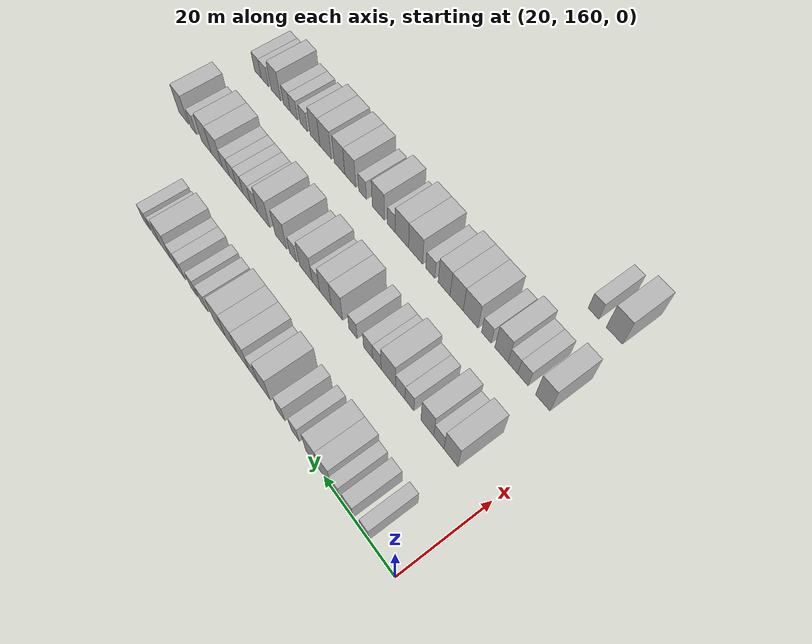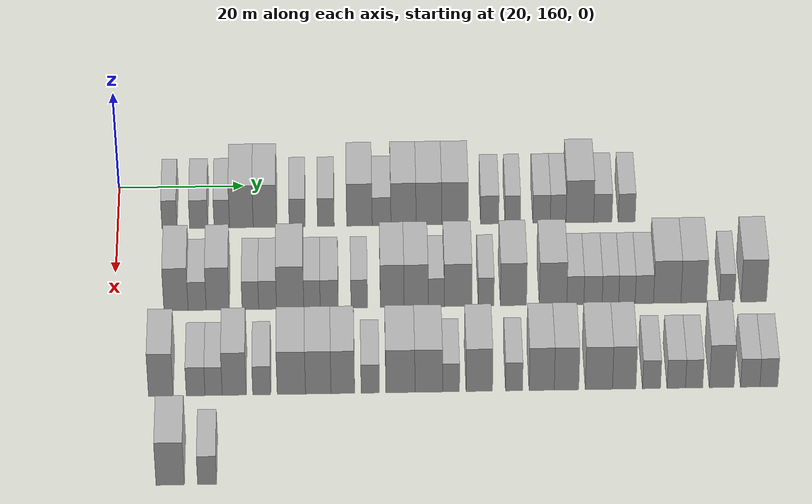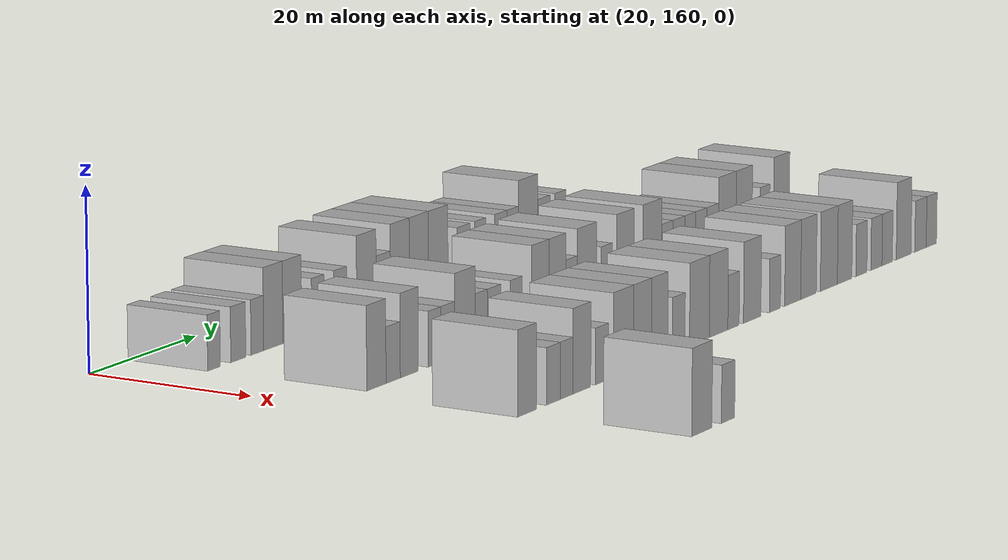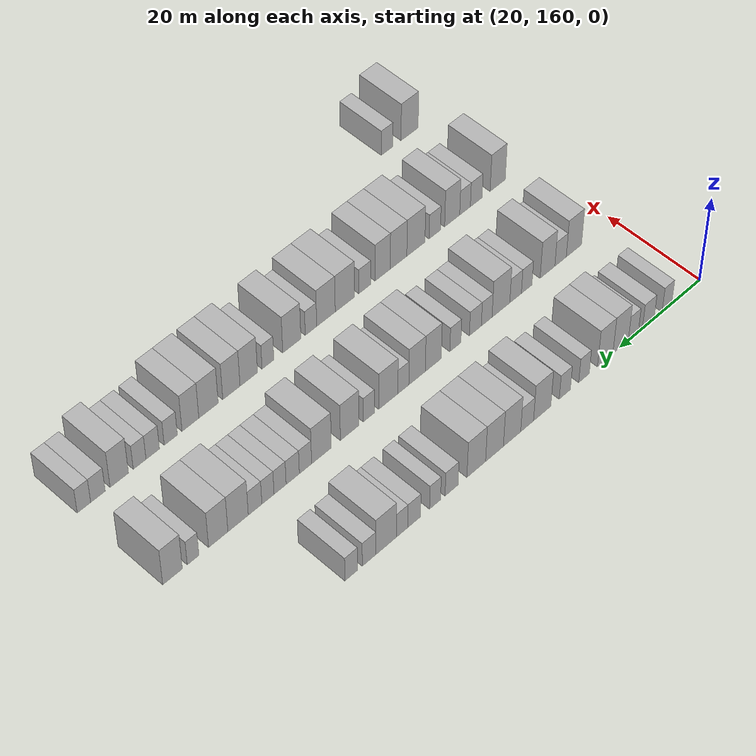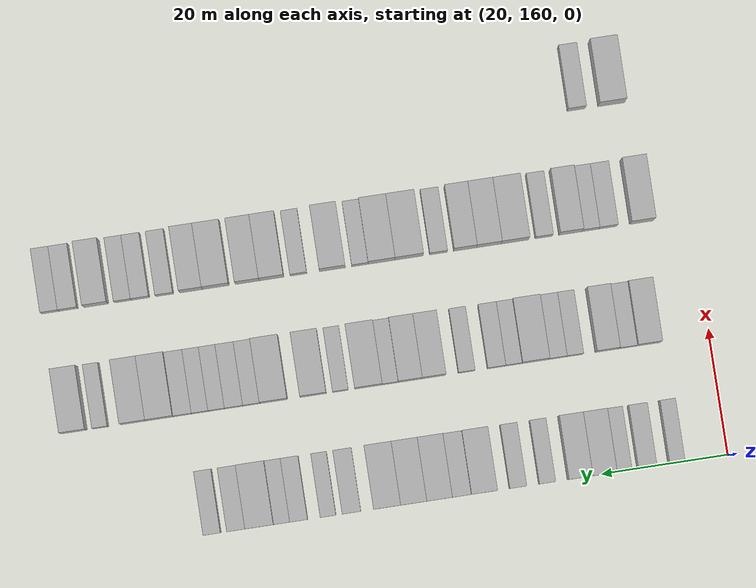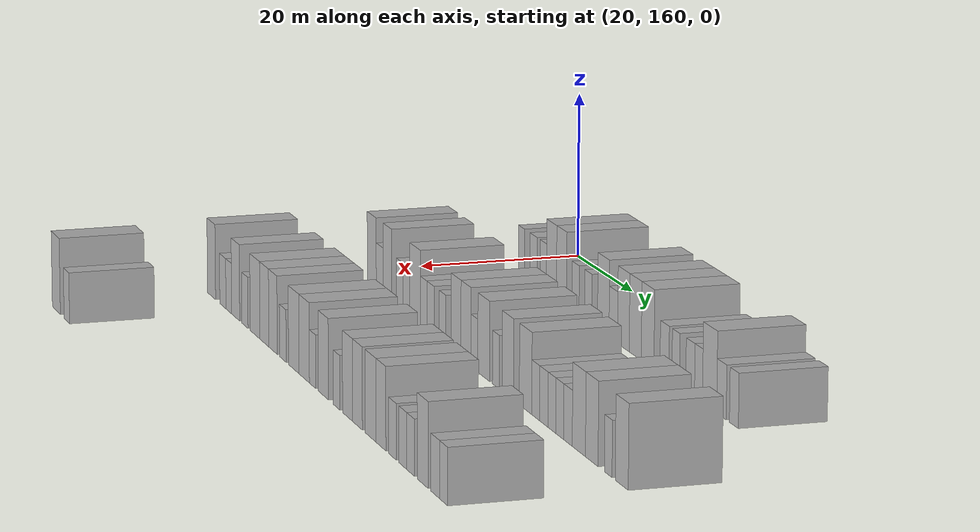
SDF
<sdf version="1.6">
 <world name="default">
  <model name="building_126">
   <static>1</static>
   <pose>25.0000 168.3255 0 0.000000 0.000000 0.000000</pose>
   <link name="link">
    <pose>0 0 3.00 0 0 0</pose>
    <collision name="collision"><geometry><box><size>10.0000 2.4147 6.0000</size></box></geometry></collision>
    <visual name="visual">
     <cast_shadows>0</cast_shadows>
     <geometry><box><size>10.0000 2.4147 6.0000</size></box></geometry>
     <material>
      <script>
       <uri>model://HANNAS_wall/materials/scripts</uri>
       <uri>model://HANNAS_wall/materials/textures</uri>
       <name>vrc/HANNAS_wall</name>
      </script>
     </material>
    </visual>
   </link>
  </model>
  <model name="building_127">
   <static>1</static>
   <pose>25.0000 172.9852 0 0.000000 0.000000 0.000000</pose>
   <link name="link">
    <pose>0 0 3.00 0 0 0</pose>
    <collision name="collision"><geometry><box><size>10.0000 2.9047 6.0000</size></box></geometry></collision>
    <visual name="visual">
     <cast_shadows>0</cast_shadows>
     <geometry><box><size>10.0000 2.9047 6.0000</size></box></geometry>
     <material>
      <script>
       <uri>model://HANNAS_wall/materials/scripts</uri>
       <uri>model://HANNAS_wall/materials/textures</uri>
       <name>vrc/HANNAS_wall</name>
      </script>
     </material>
    </visual>
   </link>
  </model>
  <model name="building_128">
   <static>1</static>
   <pose>25.0000 176.6720 0 0.000000 0.000000 0.000000</pose>
   <link name="link">
    <pose>0 0 3.00 0 0 0</pose>
    <collision name="collision"><geometry><box><size>10.0000 2.4690 6.0000</size></box></geometry></collision>
    <visual name="visual">
     <cast_shadows>0</cast_shadows>
     <geometry><box><size>10.0000 2.4690 6.0000</size></box></geometry>
     <material>
      <script>
       <uri>model://HANNAS_wall/materials/scripts</uri>
       <uri>model://HANNAS_wall/materials/textures</uri>
       <name>vrc/HANNAS_wall</name>
      </script>
     </material>
    </visual>
   </link>
  </model>
  <model name="building_129">
   <static>1</static>
   <pose>25.0000 179.7991 0 0.000000 0.000000 0.000000</pose>
   <link name="link">
    <pose>0 0 4.50 0 0 0</pose>
    <collision name="collision"><geometry><box><size>10.0000 3.7854 9.0000</size></box></geometry></collision>
    <visual name="visual">
     <cast_shadows>0</cast_shadows>
     <geometry><box><size>10.0000 3.7854 9.0000</size></box></geometry>
     <material>
      <script>
       <uri>model://HANNAS_wall/materials/scripts</uri>
       <uri>model://HANNAS_wall/materials/textures</uri>
       <name>vrc/HANNAS_wall</name>
      </script>
     </material>
    </visual>
   </link>
  </model>
  <model name="building_130">
   <static>1</static>
   <pose>25.0000 183.5631 0 0.000000 0.000000 0.000000</pose>
   <link name="link">
    <pose>0 0 4.50 0 0 0</pose>
    <collision name="collision"><geometry><box><size>10.0000 3.7427 9.0000</size></box></geometry></collision>
    <visual name="visual">
     <cast_shadows>0</cast_shadows>
     <geometry><box><size>10.0000 3.7427 9.0000</size></box></geometry>
     <material>
      <script>
       <uri>model://HANNAS_wall/materials/scripts</uri>
       <uri>model://HANNAS_wall/materials/textures</uri>
       <name>vrc/HANNAS_wall</name>
      </script>
     </material>
    </visual>
   </link>
  </model>
  <model name="building_131">
   <static>1</static>
   <pose>25.0000 188.7011 0 0.000000 0.000000 0.000000</pose>
   <link name="link">
    <pose>0 0 3.00 0 0 0</pose>
    <collision name="collision"><geometry><box><size>10.0000 2.5333 6.0000</size></box></geometry></collision>
    <visual name="visual">
     <cast_shadows>0</cast_shadows>
     <geometry><box><size>10.0000 2.5333 6.0000</size></box></geometry>
     <material>
      <script>
       <uri>model://HANNAS_wall/materials/scripts</uri>
       <uri>model://HANNAS_wall/materials/textures</uri>
       <name>vrc/HANNAS_wall</name>
      </script>
     </material>
    </visual>
   </link>
  </model>
  <model name="building_132">
   <static>1</static>
   <pose>25.0000 193.2896 0 0.000000 0.000000 0.000000</pose>
   <link name="link">
    <pose>0 0 3.00 0 0 0</pose>
    <collision name="collision"><geometry><box><size>10.0000 2.6437 6.0000</size></box></geometry></collision>
    <visual name="visual">
     <cast_shadows>0</cast_shadows>
     <geometry><box><size>10.0000 2.6437 6.0000</size></box></geometry>
     <material>
      <script>
       <uri>model://HANNAS_wall/materials/scripts</uri>
       <uri>model://HANNAS_wall/materials/textures</uri>
       <name>vrc/HANNAS_wall</name>
      </script>
     </material>
    </visual>
   </link>
  </model>
  <model name="building_133">
   <static>1</static>
   <pose>25.0000 198.6399 0 0.000000 0.000000 0.000000</pose>
   <link name="link">
    <pose>0 0 4.50 0 0 0</pose>
    <collision name="collision"><geometry><box><size>10.0000 4.0569 9.0000</size></box></geometry></collision>
    <visual name="visual">
     <cast_shadows>0</cast_shadows>
     <geometry><box><size>10.0000 4.0569 9.0000</size></box></geometry>
     <material>
      <script>
       <uri>model://HANNAS_wall/materials/scripts</uri>
       <uri>model://HANNAS_wall/materials/textures</uri>
       <name>vrc/HANNAS_wall</name>
      </script>
     </material>
    </visual>
   </link>
  </model>
  <model name="building_134">
   <static>1</static>
   <pose>25.0000 202.1631 0 0.000000 0.000000 0.000000</pose>
   <link name="link">
    <pose>0 0 3.00 0 0 0</pose>
    <collision name="collision"><geometry><box><size>10.0000 2.9894 6.0000</size></box></geometry></collision>
    <visual name="visual">
     <cast_shadows>0</cast_shadows>
     <geometry><box><size>10.0000 2.9894 6.0000</size></box></geometry>
     <material>
      <script>
       <uri>model://HANNAS_wall/materials/scripts</uri>
       <uri>model://HANNAS_wall/materials/textures</uri>
       <name>vrc/HANNAS_wall</name>
      </script>
     </material>
    </visual>
   </link>
  </model>
  <model name="building_135">
   <static>1</static>
   <pose>25.0000 205.6611 0 0.000000 0.000000 0.000000</pose>
   <link name="link">
    <pose>0 0 4.50 0 0 0</pose>
    <collision name="collision"><geometry><box><size>10.0000 4.0067 9.0000</size></box></geometry></collision>
    <visual name="visual">
     <cast_shadows>0</cast_shadows>
     <geometry><box><size>10.0000 4.0067 9.0000</size></box></geometry>
     <material>
      <script>
       <uri>model://HANNAS_wall/materials/scripts</uri>
       <uri>model://HANNAS_wall/materials/textures</uri>
       <name>vrc/HANNAS_wall</name>
      </script>
     </material>
    </visual>
   </link>
  </model>
  <model name="building_136">
   <static>1</static>
   <pose>25.0000 209.7073 0 0.000000 0.000000 0.000000</pose>
   <link name="link">
    <pose>0 0 4.50 0 0 0</pose>
    <collision name="collision"><geometry><box><size>10.0000 4.0858 9.0000</size></box></geometry></collision>
    <visual name="visual">
     <cast_shadows>0</cast_shadows>
     <geometry><box><size>10.0000 4.0858 9.0000</size></box></geometry>
     <material>
      <script>
       <uri>model://HANNAS_wall/materials/scripts</uri>
       <uri>model://HANNAS_wall/materials/textures</uri>
       <name>vrc/HANNAS_wall</name>
      </script>
     </material>
    </visual>
   </link>
  </model>
  <model name="building_137">
   <static>1</static>
   <pose>25.0000 213.8695 0 0.000000 0.000000 0.000000</pose>
   <link name="link">
    <pose>0 0 4.50 0 0 0</pose>
    <collision name="collision"><geometry><box><size>10.0000 4.2385 9.0000</size></box></geometry></collision>
    <visual name="visual">
     <cast_shadows>0</cast_shadows>
     <geometry><box><size>10.0000 4.2385 9.0000</size></box></geometry>
     <material>
      <script>
       <uri>model://HANNAS_wall/materials/scripts</uri>
       <uri>model://HANNAS_wall/materials/textures</uri>
       <name>vrc/HANNAS_wall</name>
      </script>
     </material>
    </visual>
   </link>
  </model>
  <model name="building_138">
   <static>1</static>
   <pose>25.0000 219.4439 0 0.000000 0.000000 0.000000</pose>
   <link name="link">
    <pose>0 0 3.00 0 0 0</pose>
    <collision name="collision"><geometry><box><size>10.0000 2.9102 6.0000</size></box></geometry></collision>
    <visual name="visual">
     <cast_shadows>0</cast_shadows>
     <geometry><box><size>10.0000 2.9102 6.0000</size></box></geometry>
     <material>
      <script>
       <uri>model://HANNAS_wall/materials/scripts</uri>
       <uri>model://HANNAS_wall/materials/textures</uri>
       <name>vrc/HANNAS_wall</name>
      </script>
     </material>
    </visual>
   </link>
  </model>
  <model name="building_139">
   <static>1</static>
   <pose>25.0000 223.1220 0 0.000000 0.000000 0.000000</pose>
   <link name="link">
    <pose>0 0 3.00 0 0 0</pose>
    <collision name="collision"><geometry><box><size>10.0000 2.4459 6.0000</size></box></geometry></collision>
    <visual name="visual">
     <cast_shadows>0</cast_shadows>
     <geometry><box><size>10.0000 2.4459 6.0000</size></box></geometry>
     <material>
      <script>
       <uri>model://HANNAS_wall/materials/scripts</uri>
       <uri>model://HANNAS_wall/materials/textures</uri>
       <name>vrc/HANNAS_wall</name>
      </script>
     </material>
    </visual>
   </link>
  </model>
  <model name="building_140">
   <static>1</static>
   <pose>25.0000 227.7401 0 0.000000 0.000000 0.000000</pose>
   <link name="link">
    <pose>0 0 3.00 0 0 0</pose>
    <collision name="collision"><geometry><box><size>10.0000 2.7903 6.0000</size></box></geometry></collision>
    <visual name="visual">
     <cast_shadows>0</cast_shadows>
     <geometry><box><size>10.0000 2.7903 6.0000</size></box></geometry>
     <material>
      <script>
       <uri>model://HANNAS_wall/materials/scripts</uri>
       <uri>model://HANNAS_wall/materials/textures</uri>
       <name>vrc/HANNAS_wall</name>
      </script>
     </material>
    </visual>
   </link>
  </model>
  <model name="building_141">
   <static>1</static>
   <pose>25.0000 230.3932 0 0.000000 0.000000 0.000000</pose>
   <link name="link">
    <pose>0 0 3.00 0 0 0</pose>
    <collision name="collision"><geometry><box><size>10.0000 2.5159 6.0000</size></box></geometry></collision>
    <visual name="visual">
     <cast_shadows>0</cast_shadows>
     <geometry><box><size>10.0000 2.5159 6.0000</size></box></geometry>
     <material>
      <script>
       <uri>model://HANNAS_wall/materials/scripts</uri>
       <uri>model://HANNAS_wall/materials/textures</uri>
       <name>vrc/HANNAS_wall</name>
      </script>
     </material>
    </visual>
   </link>
  </model>
  <model name="building_142">
   <static>1</static>
   <pose>25.0000 233.8676 0 0.000000 0.000000 0.000000</pose>
   <link name="link">
    <pose>0 0 4.50 0 0 0</pose>
    <collision name="collision"><geometry><box><size>10.0000 4.4328 9.0000</size></box></geometry></collision>
    <visual name="visual">
     <cast_shadows>0</cast_shadows>
     <geometry><box><size>10.0000 4.4328 9.0000</size></box></geometry>
     <material>
      <script>
       <uri>model://HANNAS_wall/materials/scripts</uri>
       <uri>model://HANNAS_wall/materials/textures</uri>
       <name>vrc/HANNAS_wall</name>
      </script>
     </material>
    </visual>
   </link>
  </model>
  <model name="building_143">
   <static>1</static>
   <pose>25.0000 237.5446 0 0.000000 0.000000 0.000000</pose>
   <link name="link">
    <pose>0 0 3.00 0 0 0</pose>
    <collision name="collision"><geometry><box><size>10.0000 2.9213 6.0000</size></box></geometry></collision>
    <visual name="visual">
     <cast_shadows>0</cast_shadows>
     <geometry><box><size>10.0000 2.9213 6.0000</size></box></geometry>
     <material>
      <script>
       <uri>model://HANNAS_wall/materials/scripts</uri>
       <uri>model://HANNAS_wall/materials/textures</uri>
       <name>vrc/HANNAS_wall</name>
      </script>
     </material>
    </visual>
   </link>
  </model>
  <model name="building_144">
   <static>1</static>
   <pose>25.0000 241.3592 0 0.000000 0.000000 0.000000</pose>
   <link name="link">
    <pose>0 0 3.00 0 0 0</pose>
    <collision name="collision"><geometry><box><size>10.0000 2.7078 6.0000</size></box></geometry></collision>
    <visual name="visual">
     <cast_shadows>0</cast_shadows>
     <geometry><box><size>10.0000 2.7078 6.0000</size></box></geometry>
     <material>
      <script>
       <uri>model://HANNAS_wall/materials/scripts</uri>
       <uri>model://HANNAS_wall/materials/textures</uri>
       <name>vrc/HANNAS_wall</name>
      </script>
     </material>
    </visual>
   </link>
  </model>
  <model name="building_295">
   <static>1</static>
   <pose>44.0000 169.7570 0 0.000000 0.000000 0.000000</pose>
   <link name="link">
    <pose>0 0 4.50 0 0 0</pose>
    <collision name="collision"><geometry><box><size>10.0000 3.7927 9.0000</size></box></geometry></collision>
    <visual name="visual">
     <cast_shadows>0</cast_shadows>
     <geometry><box><size>10.0000 3.7927 9.0000</size></box></geometry>
     <material>
      <script>
       <uri>model://HANNAS_wall/materials/scripts</uri>
       <uri>model://HANNAS_wall/materials/textures</uri>
       <name>vrc/HANNAS_wall</name>
      </script>
     </material>
    </visual>
   </link>
  </model>
  <model name="building_296">
   <static>1</static>
   <pose>44.0000 173.0677 0 0.000000 0.000000 0.000000</pose>
   <link name="link">
    <pose>0 0 3.00 0 0 0</pose>
    <collision name="collision"><geometry><box><size>10.0000 2.8288 6.0000</size></box></geometry></collision>
    <visual name="visual">
     <cast_shadows>0</cast_shadows>
     <geometry><box><size>10.0000 2.8288 6.0000</size></box></geometry>
     <material>
      <script>
       <uri>model://HANNAS_wall/materials/scripts</uri>
       <uri>model://HANNAS_wall/materials/textures</uri>
       <name>vrc/HANNAS_wall</name>
      </script>
     </material>
    </visual>
   </link>
  </model>
  <model name="building_297">
   <static>1</static>
   <pose>44.0000 176.2962 0 0.000000 0.000000 0.000000</pose>
   <link name="link">
    <pose>0 0 4.50 0 0 0</pose>
    <collision name="collision"><geometry><box><size>10.0000 3.6283 9.0000</size></box></geometry></collision>
    <visual name="visual">
     <cast_shadows>0</cast_shadows>
     <geometry><box><size>10.0000 3.6283 9.0000</size></box></geometry>
     <material>
      <script>
       <uri>model://HANNAS_wall/materials/scripts</uri>
       <uri>model://HANNAS_wall/materials/textures</uri>
       <name>vrc/HANNAS_wall</name>
      </script>
     </material>
    </visual>
   </link>
  </model>
  <model name="building_298">
   <static>1</static>
   <pose>44.0000 181.4017 0 0.000000 0.000000 0.000000</pose>
   <link name="link">
    <pose>0 0 3.00 0 0 0</pose>
    <collision name="collision"><geometry><box><size>10.0000 2.5827 6.0000</size></box></geometry></collision>
    <visual name="visual">
     <cast_shadows>0</cast_shadows>
     <geometry><box><size>10.0000 2.5827 6.0000</size></box></geometry>
     <material>
      <script>
       <uri>model://HANNAS_wall/materials/scripts</uri>
       <uri>model://HANNAS_wall/materials/textures</uri>
       <name>vrc/HANNAS_wall</name>
      </script>
     </material>
    </visual>
   </link>
  </model>
  <model name="building_299">
   <static>1</static>
   <pose>44.0000 184.0940 0 0.000000 0.000000 0.000000</pose>
   <link name="link">
    <pose>0 0 3.00 0 0 0</pose>
    <collision name="collision"><geometry><box><size>10.0000 2.8018 6.0000</size></box></geometry></collision>
    <visual name="visual">
     <cast_shadows>0</cast_shadows>
     <geometry><box><size>10.0000 2.8018 6.0000</size></box></geometry>
     <material>
      <script>
       <uri>model://HANNAS_wall/materials/scripts</uri>
       <uri>model://HANNAS_wall/materials/textures</uri>
       <name>vrc/HANNAS_wall</name>
      </script>
     </material>
    </visual>
   </link>
  </model>
  <model name="building_300">
   <static>1</static>
   <pose>44.0000 187.6282 0 0.000000 0.000000 0.000000</pose>
   <link name="link">
    <pose>0 0 4.50 0 0 0</pose>
    <collision name="collision"><geometry><box><size>10.0000 4.2666 9.0000</size></box></geometry></collision>
    <visual name="visual">
     <cast_shadows>0</cast_shadows>
     <geometry><box><size>10.0000 4.2666 9.0000</size></box></geometry>
     <material>
      <script>
       <uri>model://HANNAS_wall/materials/scripts</uri>
       <uri>model://HANNAS_wall/materials/textures</uri>
       <name>vrc/HANNAS_wall</name>
      </script>
     </material>
    </visual>
   </link>
  </model>
  <model name="building_301">
   <static>1</static>
   <pose>44.0000 191.0411 0 0.000000 0.000000 0.000000</pose>
   <link name="link">
    <pose>0 0 3.00 0 0 0</pose>
    <collision name="collision"><geometry><box><size>10.0000 2.5593 6.0000</size></box></geometry></collision>
    <visual name="visual">
     <cast_shadows>0</cast_shadows>
     <geometry><box><size>10.0000 2.5593 6.0000</size></box></geometry>
     <material>
      <script>
       <uri>model://HANNAS_wall/materials/scripts</uri>
       <uri>model://HANNAS_wall/materials/textures</uri>
       <name>vrc/HANNAS_wall</name>
      </script>
     </material>
    </visual>
   </link>
  </model>
  <model name="building_302">
   <static>1</static>
   <pose>44.0000 193.7359 0 0.000000 0.000000 0.000000</pose>
   <link name="link">
    <pose>0 0 3.00 0 0 0</pose>
    <collision name="collision"><geometry><box><size>10.0000 2.8303 6.0000</size></box></geometry></collision>
    <visual name="visual">
     <cast_shadows>0</cast_shadows>
     <geometry><box><size>10.0000 2.8303 6.0000</size></box></geometry>
     <material>
      <script>
       <uri>model://HANNAS_wall/materials/scripts</uri>
       <uri>model://HANNAS_wall/materials/textures</uri>
       <name>vrc/HANNAS_wall</name>
      </script>
     </material>
    </visual>
   </link>
  </model>
  <model name="building_303">
   <static>1</static>
   <pose>44.0000 198.4488 0 0.000000 0.000000 0.000000</pose>
   <link name="link">
    <pose>0 0 3.00 0 0 0</pose>
    <collision name="collision"><geometry><box><size>10.0000 2.5955 6.0000</size></box></geometry></collision>
    <visual name="visual">
     <cast_shadows>0</cast_shadows>
     <geometry><box><size>10.0000 2.5955 6.0000</size></box></geometry>
     <material>
      <script>
       <uri>model://HANNAS_wall/materials/scripts</uri>
       <uri>model://HANNAS_wall/materials/textures</uri>
       <name>vrc/HANNAS_wall</name>
      </script>
     </material>
    </visual>
   </link>
  </model>
  <model name="building_304">
   <static>1</static>
   <pose>44.0000 203.6031 0 0.000000 0.000000 0.000000</pose>
   <link name="link">
    <pose>0 0 4.50 0 0 0</pose>
    <collision name="collision"><geometry><box><size>10.0000 3.7130 9.0000</size></box></geometry></collision>
    <visual name="visual">
     <cast_shadows>0</cast_shadows>
     <geometry><box><size>10.0000 3.7130 9.0000</size></box></geometry>
     <material>
      <script>
       <uri>model://HANNAS_wall/materials/scripts</uri>
       <uri>model://HANNAS_wall/materials/textures</uri>
       <name>vrc/HANNAS_wall</name>
      </script>
     </material>
    </visual>
   </link>
  </model>
  <model name="building_305">
   <static>1</static>
   <pose>44.0000 207.3473 0 0.000000 0.000000 0.000000</pose>
   <link name="link">
    <pose>0 0 4.50 0 0 0</pose>
    <collision name="collision"><geometry><box><size>10.0000 3.7754 9.0000</size></box></geometry></collision>
    <visual name="visual">
     <cast_shadows>0</cast_shadows>
     <geometry><box><size>10.0000 3.7754 9.0000</size></box></geometry>
     <material>
      <script>
       <uri>model://HANNAS_wall/materials/scripts</uri>
       <uri>model://HANNAS_wall/materials/textures</uri>
       <name>vrc/HANNAS_wall</name>
      </script>
     </material>
    </visual>
   </link>
  </model>
  <model name="building_306">
   <static>1</static>
   <pose>44.0000 210.4851 0 0.000000 0.000000 0.000000</pose>
   <link name="link">
    <pose>0 0 3.00 0 0 0</pose>
    <collision name="collision"><geometry><box><size>10.0000 2.5001 6.0000</size></box></geometry></collision>
    <visual name="visual">
     <cast_shadows>0</cast_shadows>
     <geometry><box><size>10.0000 2.5001 6.0000</size></box></geometry>
     <material>
      <script>
       <uri>model://HANNAS_wall/materials/scripts</uri>
       <uri>model://HANNAS_wall/materials/textures</uri>
       <name>vrc/HANNAS_wall</name>
      </script>
     </material>
    </visual>
   </link>
  </model>
  <model name="building_307">
   <static>1</static>
   <pose>44.0000 213.9027 0 0.000000 0.000000 0.000000</pose>
   <link name="link">
    <pose>0 0 4.50 0 0 0</pose>
    <collision name="collision"><geometry><box><size>10.0000 4.3350 9.0000</size></box></geometry></collision>
    <visual name="visual">
     <cast_shadows>0</cast_shadows>
     <geometry><box><size>10.0000 4.3350 9.0000</size></box></geometry>
     <material>
      <script>
       <uri>model://HANNAS_wall/materials/scripts</uri>
       <uri>model://HANNAS_wall/materials/textures</uri>
       <name>vrc/HANNAS_wall</name>
      </script>
     </material>
    </visual>
   </link>
  </model>
  <model name="building_308">
   <static>1</static>
   <pose>44.0000 218.3056 0 0.000000 0.000000 0.000000</pose>
   <link name="link">
    <pose>0 0 3.00 0 0 0</pose>
    <collision name="collision"><geometry><box><size>10.0000 2.4708 6.0000</size></box></geometry></collision>
    <visual name="visual">
     <cast_shadows>0</cast_shadows>
     <geometry><box><size>10.0000 2.4708 6.0000</size></box></geometry>
     <material>
      <script>
       <uri>model://HANNAS_wall/materials/scripts</uri>
       <uri>model://HANNAS_wall/materials/textures</uri>
       <name>vrc/HANNAS_wall</name>
      </script>
     </material>
    </visual>
   </link>
  </model>
  <model name="building_309">
   <static>1</static>
   <pose>44.0000 222.5954 0 0.000000 0.000000 0.000000</pose>
   <link name="link">
    <pose>0 0 4.50 0 0 0</pose>
    <collision name="collision"><geometry><box><size>10.0000 4.1089 9.0000</size></box></geometry></collision>
    <visual name="visual">
     <cast_shadows>0</cast_shadows>
     <geometry><box><size>10.0000 4.1089 9.0000</size></box></geometry>
     <material>
      <script>
       <uri>model://HANNAS_wall/materials/scripts</uri>
       <uri>model://HANNAS_wall/materials/textures</uri>
       <name>vrc/HANNAS_wall</name>
      </script>
     </material>
    </visual>
   </link>
  </model>
  <model name="building_310">
   <static>1</static>
   <pose>44.0000 228.8108 0 0.000000 0.000000 0.000000</pose>
   <link name="link">
    <pose>0 0 4.50 0 0 0</pose>
    <collision name="collision"><geometry><box><size>10.0000 4.3220 9.0000</size></box></geometry></collision>
    <visual name="visual">
     <cast_shadows>0</cast_shadows>
     <geometry><box><size>10.0000 4.3220 9.0000</size></box></geometry>
     <material>
      <script>
       <uri>model://HANNAS_wall/materials/scripts</uri>
       <uri>model://HANNAS_wall/materials/textures</uri>
       <name>vrc/HANNAS_wall</name>
      </script>
     </material>
    </visual>
   </link>
  </model>
  <model name="building_311">
   <static>1</static>
   <pose>44.0000 232.3032 0 0.000000 0.000000 0.000000</pose>
   <link name="link">
    <pose>0 0 3.00 0 0 0</pose>
    <collision name="collision"><geometry><box><size>10.0000 2.6628 6.0000</size></box></geometry></collision>
    <visual name="visual">
     <cast_shadows>0</cast_shadows>
     <geometry><box><size>10.0000 2.6628 6.0000</size></box></geometry>
     <material>
      <script>
       <uri>model://HANNAS_wall/materials/scripts</uri>
       <uri>model://HANNAS_wall/materials/textures</uri>
       <name>vrc/HANNAS_wall</name>
      </script>
     </material>
    </visual>
   </link>
  </model>
  <model name="building_312">
   <static>1</static>
   <pose>44.0000 235.0671 0 0.000000 0.000000 0.000000</pose>
   <link name="link">
    <pose>0 0 3.00 0 0 0</pose>
    <collision name="collision"><geometry><box><size>10.0000 2.8650 6.0000</size></box></geometry></collision>
    <visual name="visual">
     <cast_shadows>0</cast_shadows>
     <geometry><box><size>10.0000 2.8650 6.0000</size></box></geometry>
     <material>
      <script>
       <uri>model://HANNAS_wall/materials/scripts</uri>
       <uri>model://HANNAS_wall/materials/textures</uri>
       <name>vrc/HANNAS_wall</name>
      </script>
     </material>
    </visual>
   </link>
  </model>
  <model name="building_313">
   <static>1</static>
   <pose>44.0000 237.7959 0 0.000000 0.000000 0.000000</pose>
   <link name="link">
    <pose>0 0 3.00 0 0 0</pose>
    <collision name="collision"><geometry><box><size>10.0000 2.5925 6.0000</size></box></geometry></collision>
    <visual name="visual">
     <cast_shadows>0</cast_shadows>
     <geometry><box><size>10.0000 2.5925 6.0000</size></box></geometry>
     <material>
      <script>
       <uri>model://HANNAS_wall/materials/scripts</uri>
       <uri>model://HANNAS_wall/materials/textures</uri>
       <name>vrc/HANNAS_wall</name>
      </script>
     </material>
    </visual>
   </link>
  </model>
  <model name="building_314">
   <static>1</static>
   <pose>44.0000 240.3921 0 0.000000 0.000000 0.000000</pose>
   <link name="link">
    <pose>0 0 3.00 0 0 0</pose>
    <collision name="collision"><geometry><box><size>10.0000 2.5998 6.0000</size></box></geometry></collision>
    <visual name="visual">
     <cast_shadows>0</cast_shadows>
     <geometry><box><size>10.0000 2.5998 6.0000</size></box></geometry>
     <material>
      <script>
       <uri>model://HANNAS_wall/materials/scripts</uri>
       <uri>model://HANNAS_wall/materials/textures</uri>
       <name>vrc/HANNAS_wall</name>
      </script>
     </material>
    </visual>
   </link>
  </model>
  <model name="building_315">
   <static>1</static>
   <pose>44.0000 243.1312 0 0.000000 0.000000 0.000000</pose>
   <link name="link">
    <pose>0 0 3.00 0 0 0</pose>
    <collision name="collision"><geometry><box><size>10.0000 2.8784 6.0000</size></box></geometry></collision>
    <visual name="visual">
     <cast_shadows>0</cast_shadows>
     <geometry><box><size>10.0000 2.8784 6.0000</size></box></geometry>
     <material>
      <script>
       <uri>model://HANNAS_wall/materials/scripts</uri>
       <uri>model://HANNAS_wall/materials/textures</uri>
       <name>vrc/HANNAS_wall</name>
      </script>
     </material>
    </visual>
   </link>
  </model>
  <model name="building_316">
   <static>1</static>
   <pose>44.0000 246.7166 0 0.000000 0.000000 0.000000</pose>
   <link name="link">
    <pose>0 0 4.50 0 0 0</pose>
    <collision name="collision"><geometry><box><size>10.0000 4.2925 9.0000</size></box></geometry></collision>
    <visual name="visual">
     <cast_shadows>0</cast_shadows>
     <geometry><box><size>10.0000 4.2925 9.0000</size></box></geometry>
     <material>
      <script>
       <uri>model://HANNAS_wall/materials/scripts</uri>
       <uri>model://HANNAS_wall/materials/textures</uri>
       <name>vrc/HANNAS_wall</name>
      </script>
     </material>
    </visual>
   </link>
  </model>
  <model name="building_317">
   <static>1</static>
   <pose>44.0000 250.8756 0 0.000000 0.000000 0.000000</pose>
   <link name="link">
    <pose>0 0 4.50 0 0 0</pose>
    <collision name="collision"><geometry><box><size>10.0000 4.0255 9.0000</size></box></geometry></collision>
    <visual name="visual">
     <cast_shadows>0</cast_shadows>
     <geometry><box><size>10.0000 4.0255 9.0000</size></box></geometry>
     <material>
      <script>
       <uri>model://HANNAS_wall/materials/scripts</uri>
       <uri>model://HANNAS_wall/materials/textures</uri>
       <name>vrc/HANNAS_wall</name>
      </script>
     </material>
    </visual>
   </link>
  </model>
  <model name="building_318">
   <static>1</static>
   <pose>44.0000 256.0887 0 0.000000 0.000000 0.000000</pose>
   <link name="link">
    <pose>0 0 3.00 0 0 0</pose>
    <collision name="collision"><geometry><box><size>10.0000 2.4007 6.0000</size></box></geometry></collision>
    <visual name="visual">
     <cast_shadows>0</cast_shadows>
     <geometry><box><size>10.0000 2.4007 6.0000</size></box></geometry>
     <material>
      <script>
       <uri>model://HANNAS_wall/materials/scripts</uri>
       <uri>model://HANNAS_wall/materials/textures</uri>
       <name>vrc/HANNAS_wall</name>
      </script>
     </material>
    </visual>
   </link>
  </model>
  <model name="building_319">
   <static>1</static>
   <pose>44.0000 260.2966 0 0.000000 0.000000 0.000000</pose>
   <link name="link">
    <pose>0 0 4.50 0 0 0</pose>
    <collision name="collision"><geometry><box><size>10.0000 4.0151 9.0000</size></box></geometry></collision>
    <visual name="visual">
     <cast_shadows>0</cast_shadows>
     <geometry><box><size>10.0000 4.0151 9.0000</size></box></geometry>
     <material>
      <script>
       <uri>model://HANNAS_wall/materials/scripts</uri>
       <uri>model://HANNAS_wall/materials/textures</uri>
       <name>vrc/HANNAS_wall</name>
      </script>
     </material>
    </visual>
   </link>
  </model>
  <model name="building_472">
   <static>1</static>
   <pose>63.0000 167.8338 0 0.000000 0.000000 0.000000</pose>
   <link name="link">
    <pose>0 0 4.50 0 0 0</pose>
    <collision name="collision"><geometry><box><size>10.0000 3.7874 9.0000</size></box></geometry></collision>
    <visual name="visual">
     <cast_shadows>0</cast_shadows>
     <geometry><box><size>10.0000 3.7874 9.0000</size></box></geometry>
     <material>
      <script>
       <uri>model://HANNAS_wall/materials/scripts</uri>
       <uri>model://HANNAS_wall/materials/textures</uri>
       <name>vrc/HANNAS_wall</name>
      </script>
     </material>
    </visual>
   </link>
  </model>
  <model name="building_473">
   <static>1</static>
   <pose>63.0000 173.1714 0 0.000000 0.000000 0.000000</pose>
   <link name="link">
    <pose>0 0 3.00 0 0 0</pose>
    <collision name="collision"><geometry><box><size>10.0000 2.8876 6.0000</size></box></geometry></collision>
    <visual name="visual">
     <cast_shadows>0</cast_shadows>
     <geometry><box><size>10.0000 2.8876 6.0000</size></box></geometry>
     <material>
      <script>
       <uri>model://HANNAS_wall/materials/scripts</uri>
       <uri>model://HANNAS_wall/materials/textures</uri>
       <name>vrc/HANNAS_wall</name>
      </script>
     </material>
    </visual>
   </link>
  </model>
  <model name="building_474">
   <static>1</static>
   <pose>63.0000 175.9283 0 0.000000 0.000000 0.000000</pose>
   <link name="link">
    <pose>0 0 3.00 0 0 0</pose>
    <collision name="collision"><geometry><box><size>10.0000 2.6262 6.0000</size></box></geometry></collision>
    <visual name="visual">
     <cast_shadows>0</cast_shadows>
     <geometry><box><size>10.0000 2.6262 6.0000</size></box></geometry>
     <material>
      <script>
       <uri>model://HANNAS_wall/materials/scripts</uri>
       <uri>model://HANNAS_wall/materials/textures</uri>
       <name>vrc/HANNAS_wall</name>
      </script>
     </material>
    </visual>
   </link>
  </model>
  <model name="building_475">
   <static>1</static>
   <pose>63.0000 179.0829 0 0.000000 0.000000 0.000000</pose>
   <link name="link">
    <pose>0 0 4.50 0 0 0</pose>
    <collision name="collision"><geometry><box><size>10.0000 3.6831 9.0000</size></box></geometry></collision>
    <visual name="visual">
     <cast_shadows>0</cast_shadows>
     <geometry><box><size>10.0000 3.6831 9.0000</size></box></geometry>
     <material>
      <script>
       <uri>model://HANNAS_wall/materials/scripts</uri>
       <uri>model://HANNAS_wall/materials/textures</uri>
       <name>vrc/HANNAS_wall</name>
      </script>
     </material>
    </visual>
   </link>
  </model>
  <model name="building_476">
   <static>1</static>
   <pose>63.0000 183.3025 0 0.000000 0.000000 0.000000</pose>
   <link name="link">
    <pose>0 0 3.00 0 0 0</pose>
    <collision name="collision"><geometry><box><size>10.0000 2.7562 6.0000</size></box></geometry></collision>
    <visual name="visual">
     <cast_shadows>0</cast_shadows>
     <geometry><box><size>10.0000 2.7562 6.0000</size></box></geometry>
     <material>
      <script>
       <uri>model://HANNAS_wall/materials/scripts</uri>
       <uri>model://HANNAS_wall/materials/textures</uri>
       <name>vrc/HANNAS_wall</name>
      </script>
     </material>
    </visual>
   </link>
  </model>
  <model name="building_477">
   <static>1</static>
   <pose>63.0000 187.8508 0 0.000000 0.000000 0.000000</pose>
   <link name="link">
    <pose>0 0 4.50 0 0 0</pose>
    <collision name="collision"><geometry><box><size>10.0000 4.3405 9.0000</size></box></geometry></collision>
    <visual name="visual">
     <cast_shadows>0</cast_shadows>
     <geometry><box><size>10.0000 4.3405 9.0000</size></box></geometry>
     <material>
      <script>
       <uri>model://HANNAS_wall/materials/scripts</uri>
       <uri>model://HANNAS_wall/materials/textures</uri>
       <name>vrc/HANNAS_wall</name>
      </script>
     </material>
    </visual>
   </link>
  </model>
  <model name="building_478">
   <static>1</static>
   <pose>63.0000 191.9805 0 0.000000 0.000000 0.000000</pose>
   <link name="link">
    <pose>0 0 4.50 0 0 0</pose>
    <collision name="collision"><geometry><box><size>10.0000 3.9189 9.0000</size></box></geometry></collision>
    <visual name="visual">
     <cast_shadows>0</cast_shadows>
     <geometry><box><size>10.0000 3.9189 9.0000</size></box></geometry>
     <material>
      <script>
       <uri>model://HANNAS_wall/materials/scripts</uri>
       <uri>model://HANNAS_wall/materials/textures</uri>
       <name>vrc/HANNAS_wall</name>
      </script>
     </material>
    </visual>
   </link>
  </model>
  <model name="building_479">
   <static>1</static>
   <pose>63.0000 195.7481 0 0.000000 0.000000 0.000000</pose>
   <link name="link">
    <pose>0 0 4.50 0 0 0</pose>
    <collision name="collision"><geometry><box><size>10.0000 3.6163 9.0000</size></box></geometry></collision>
    <visual name="visual">
     <cast_shadows>0</cast_shadows>
     <geometry><box><size>10.0000 3.6163 9.0000</size></box></geometry>
     <material>
      <script>
       <uri>model://HANNAS_wall/materials/scripts</uri>
       <uri>model://HANNAS_wall/materials/textures</uri>
       <name>vrc/HANNAS_wall</name>
      </script>
     </material>
    </visual>
   </link>
  </model>
  <model name="building_480">
   <static>1</static>
   <pose>63.0000 199.9565 0 0.000000 0.000000 0.000000</pose>
   <link name="link">
    <pose>0 0 3.00 0 0 0</pose>
    <collision name="collision"><geometry><box><size>10.0000 2.8006 6.0000</size></box></geometry></collision>
    <visual name="visual">
     <cast_shadows>0</cast_shadows>
     <geometry><box><size>10.0000 2.8006 6.0000</size></box></geometry>
     <material>
      <script>
       <uri>model://HANNAS_wall/materials/scripts</uri>
       <uri>model://HANNAS_wall/materials/textures</uri>
       <name>vrc/HANNAS_wall</name>
      </script>
     </material>
    </visual>
   </link>
  </model>
  <model name="building_481">
   <static>1</static>
   <pose>63.0000 204.5817 0 0.000000 0.000000 0.000000</pose>
   <link name="link">
    <pose>0 0 4.50 0 0 0</pose>
    <collision name="collision"><geometry><box><size>10.0000 4.4498 9.0000</size></box></geometry></collision>
    <visual name="visual">
     <cast_shadows>0</cast_shadows>
     <geometry><box><size>10.0000 4.4498 9.0000</size></box></geometry>
     <material>
      <script>
       <uri>model://HANNAS_wall/materials/scripts</uri>
       <uri>model://HANNAS_wall/materials/textures</uri>
       <name>vrc/HANNAS_wall</name>
      </script>
     </material>
    </visual>
   </link>
  </model>
  <model name="building_482">
   <static>1</static>
   <pose>63.0000 208.9301 0 0.000000 0.000000 0.000000</pose>
   <link name="link">
    <pose>0 0 4.50 0 0 0</pose>
    <collision name="collision"><geometry><box><size>10.0000 4.2468 9.0000</size></box></geometry></collision>
    <visual name="visual">
     <cast_shadows>0</cast_shadows>
     <geometry><box><size>10.0000 4.2468 9.0000</size></box></geometry>
     <material>
      <script>
       <uri>model://HANNAS_wall/materials/scripts</uri>
       <uri>model://HANNAS_wall/materials/textures</uri>
       <name>vrc/HANNAS_wall</name>
      </script>
     </material>
    </visual>
   </link>
  </model>
  <model name="building_483">
   <static>1</static>
   <pose>63.0000 212.3550 0 0.000000 0.000000 0.000000</pose>
   <link name="link">
    <pose>0 0 3.00 0 0 0</pose>
    <collision name="collision"><geometry><box><size>10.0000 2.6031 6.0000</size></box></geometry></collision>
    <visual name="visual">
     <cast_shadows>0</cast_shadows>
     <geometry><box><size>10.0000 2.6031 6.0000</size></box></geometry>
     <material>
      <script>
       <uri>model://HANNAS_wall/materials/scripts</uri>
       <uri>model://HANNAS_wall/materials/textures</uri>
       <name>vrc/HANNAS_wall</name>
      </script>
     </material>
    </visual>
   </link>
  </model>
  <model name="building_484">
   <static>1</static>
   <pose>63.0000 216.6936 0 0.000000 0.000000 0.000000</pose>
   <link name="link">
    <pose>0 0 4.50 0 0 0</pose>
    <collision name="collision"><geometry><box><size>10.0000 4.0740 9.0000</size></box></geometry></collision>
    <visual name="visual">
     <cast_shadows>0</cast_shadows>
     <geometry><box><size>10.0000 4.0740 9.0000</size></box></geometry>
     <material>
      <script>
       <uri>model://HANNAS_wall/materials/scripts</uri>
       <uri>model://HANNAS_wall/materials/textures</uri>
       <name>vrc/HANNAS_wall</name>
      </script>
     </material>
    </visual>
   </link>
  </model>
  <model name="building_485">
   <static>1</static>
   <pose>63.0000 222.0425 0 0.000000 0.000000 0.000000</pose>
   <link name="link">
    <pose>0 0 3.00 0 0 0</pose>
    <collision name="collision"><geometry><box><size>10.0000 2.6239 6.0000</size></box></geometry></collision>
    <visual name="visual">
     <cast_shadows>0</cast_shadows>
     <geometry><box><size>10.0000 2.6239 6.0000</size></box></geometry>
     <material>
      <script>
       <uri>model://HANNAS_wall/materials/scripts</uri>
       <uri>model://HANNAS_wall/materials/textures</uri>
       <name>vrc/HANNAS_wall</name>
      </script>
     </material>
    </visual>
   </link>
  </model>
  <model name="building_486">
   <static>1</static>
   <pose>63.0000 226.2851 0 0.000000 0.000000 0.000000</pose>
   <link name="link">
    <pose>0 0 4.50 0 0 0</pose>
    <collision name="collision"><geometry><box><size>10.0000 3.8613 9.0000</size></box></geometry></collision>
    <visual name="visual">
     <cast_shadows>0</cast_shadows>
     <geometry><box><size>10.0000 3.8613 9.0000</size></box></geometry>
     <material>
      <script>
       <uri>model://HANNAS_wall/materials/scripts</uri>
       <uri>model://HANNAS_wall/materials/textures</uri>
       <name>vrc/HANNAS_wall</name>
      </script>
     </material>
    </visual>
   </link>
  </model>
  <model name="building_487">
   <static>1</static>
   <pose>63.0000 230.1006 0 0.000000 0.000000 0.000000</pose>
   <link name="link">
    <pose>0 0 4.50 0 0 0</pose>
    <collision name="collision"><geometry><box><size>10.0000 3.7696 9.0000</size></box></geometry></collision>
    <visual name="visual">
     <cast_shadows>0</cast_shadows>
     <geometry><box><size>10.0000 3.7696 9.0000</size></box></geometry>
     <material>
      <script>
       <uri>model://HANNAS_wall/materials/scripts</uri>
       <uri>model://HANNAS_wall/materials/textures</uri>
       <name>vrc/HANNAS_wall</name>
      </script>
     </material>
    </visual>
   </link>
  </model>
  <model name="building_488">
   <static>1</static>
   <pose>63.0000 235.0757 0 0.000000 0.000000 0.000000</pose>
   <link name="link">
    <pose>0 0 4.50 0 0 0</pose>
    <collision name="collision"><geometry><box><size>10.0000 4.1807 9.0000</size></box></geometry></collision>
    <visual name="visual">
     <cast_shadows>0</cast_shadows>
     <geometry><box><size>10.0000 4.1807 9.0000</size></box></geometry>
     <material>
      <script>
       <uri>model://HANNAS_wall/materials/scripts</uri>
       <uri>model://HANNAS_wall/materials/textures</uri>
       <name>vrc/HANNAS_wall</name>
      </script>
     </material>
    </visual>
   </link>
  </model>
  <model name="building_489">
   <static>1</static>
   <pose>63.0000 238.9694 0 0.000000 0.000000 0.000000</pose>
   <link name="link">
    <pose>0 0 4.50 0 0 0</pose>
    <collision name="collision"><geometry><box><size>10.0000 3.6067 9.0000</size></box></geometry></collision>
    <visual name="visual">
     <cast_shadows>0</cast_shadows>
     <geometry><box><size>10.0000 3.6067 9.0000</size></box></geometry>
     <material>
      <script>
       <uri>model://HANNAS_wall/materials/scripts</uri>
       <uri>model://HANNAS_wall/materials/textures</uri>
       <name>vrc/HANNAS_wall</name>
      </script>
     </material>
    </visual>
   </link>
  </model>
  <model name="building_490">
   <static>1</static>
   <pose>63.0000 243.1659 0 0.000000 0.000000 0.000000</pose>
   <link name="link">
    <pose>0 0 3.00 0 0 0</pose>
    <collision name="collision"><geometry><box><size>10.0000 2.7863 6.0000</size></box></geometry></collision>
    <visual name="visual">
     <cast_shadows>0</cast_shadows>
     <geometry><box><size>10.0000 2.7863 6.0000</size></box></geometry>
     <material>
      <script>
       <uri>model://HANNAS_wall/materials/scripts</uri>
       <uri>model://HANNAS_wall/materials/textures</uri>
       <name>vrc/HANNAS_wall</name>
      </script>
     </material>
    </visual>
   </link>
  </model>
  <model name="building_491">
   <static>1</static>
   <pose>63.0000 246.9793 0 0.000000 0.000000 0.000000</pose>
   <link name="link">
    <pose>0 0 3.00 0 0 0</pose>
    <collision name="collision"><geometry><box><size>10.0000 2.8406 6.0000</size></box></geometry></collision>
    <visual name="visual">
     <cast_shadows>0</cast_shadows>
     <geometry><box><size>10.0000 2.8406 6.0000</size></box></geometry>
     <material>
      <script>
       <uri>model://HANNAS_wall/materials/scripts</uri>
       <uri>model://HANNAS_wall/materials/textures</uri>
       <name>vrc/HANNAS_wall</name>
      </script>
     </material>
    </visual>
   </link>
  </model>
  <model name="building_492">
   <static>1</static>
   <pose>63.0000 249.7275 0 0.000000 0.000000 0.000000</pose>
   <link name="link">
    <pose>0 0 3.00 0 0 0</pose>
    <collision name="collision"><geometry><box><size>10.0000 2.6557 6.0000</size></box></geometry></collision>
    <visual name="visual">
     <cast_shadows>0</cast_shadows>
     <geometry><box><size>10.0000 2.6557 6.0000</size></box></geometry>
     <material>
      <script>
       <uri>model://HANNAS_wall/materials/scripts</uri>
       <uri>model://HANNAS_wall/materials/textures</uri>
       <name>vrc/HANNAS_wall</name>
      </script>
     </material>
    </visual>
   </link>
  </model>
  <model name="building_493">
   <static>1</static>
   <pose>63.0000 253.9618 0 0.000000 0.000000 0.000000</pose>
   <link name="link">
    <pose>0 0 4.50 0 0 0</pose>
    <collision name="collision"><geometry><box><size>10.0000 3.8131 9.0000</size></box></geometry></collision>
    <visual name="visual">
     <cast_shadows>0</cast_shadows>
     <geometry><box><size>10.0000 3.8131 9.0000</size></box></geometry>
     <material>
      <script>
       <uri>model://HANNAS_wall/materials/scripts</uri>
       <uri>model://HANNAS_wall/materials/textures</uri>
       <name>vrc/HANNAS_wall</name>
      </script>
     </material>
    </visual>
   </link>
  </model>
  <model name="building_494">
   <static>1</static>
   <pose>63.0000 258.3617 0 0.000000 0.000000 0.000000</pose>
   <link name="link">
    <pose>0 0 3.00 0 0 0</pose>
    <collision name="collision"><geometry><box><size>10.0000 2.9866 6.0000</size></box></geometry></collision>
    <visual name="visual">
     <cast_shadows>0</cast_shadows>
     <geometry><box><size>10.0000 2.9866 6.0000</size></box></geometry>
     <material>
      <script>
       <uri>model://HANNAS_wall/materials/scripts</uri>
       <uri>model://HANNAS_wall/materials/textures</uri>
       <name>vrc/HANNAS_wall</name>
      </script>
     </material>
    </visual>
   </link>
  </model>
  <model name="building_495">
   <static>1</static>
   <pose>63.0000 261.2268 0 0.000000 0.000000 0.000000</pose>
   <link name="link">
    <pose>0 0 3.00 0 0 0</pose>
    <collision name="collision"><geometry><box><size>10.0000 2.7436 6.0000</size></box></geometry></collision>
    <visual name="visual">
     <cast_shadows>0</cast_shadows>
     <geometry><box><size>10.0000 2.7436 6.0000</size></box></geometry>
     <material>
      <script>
       <uri>model://HANNAS_wall/materials/scripts</uri>
       <uri>model://HANNAS_wall/materials/textures</uri>
       <name>vrc/HANNAS_wall</name>
      </script>
     </material>
    </visual>
   </link>
  </model>
  <model name="building_657">
   <static>1</static>
   <pose>82.0000 169.6800 0 0.000000 0.000000 0.000000</pose>
   <link name="link">
    <pose>0 0 4.50 0 0 0</pose>
    <collision name="collision"><geometry><box><size>10.0000 4.2460 9.0000</size></box></geometry></collision>
    <visual name="visual">
     <cast_shadows>0</cast_shadows>
     <geometry><box><size>10.0000 4.2460 9.0000</size></box></geometry>
     <material>
      <script>
       <uri>model://HANNAS_wall/materials/scripts</uri>
       <uri>model://HANNAS_wall/materials/textures</uri>
       <name>vrc/HANNAS_wall</name>
      </script>
     </material>
    </visual>
   </link>
  </model>
  <model name="building_658">
   <static>1</static>
   <pose>82.0000 175.2300 0 0.000000 0.000000 0.000000</pose>
   <link name="link">
    <pose>0 0 3.00 0 0 0</pose>
    <collision name="collision"><geometry><box><size>10.0000 2.8538 6.0000</size></box></geometry></collision>
    <visual name="visual">
     <cast_shadows>0</cast_shadows>
     <geometry><box><size>10.0000 2.8538 6.0000</size></box></geometry>
     <material>
      <script>
       <uri>model://HANNAS_wall/materials/scripts</uri>
       <uri>model://HANNAS_wall/materials/textures</uri>
       <name>vrc/HANNAS_wall</name>
      </script>
     </material>
    </visual>
   </link>
  </model>
 </world>
</sdf>
